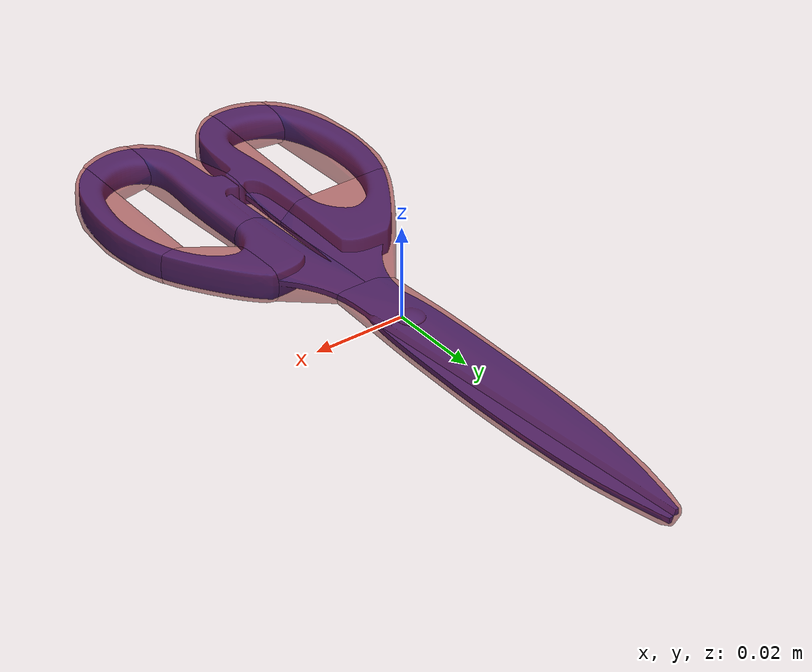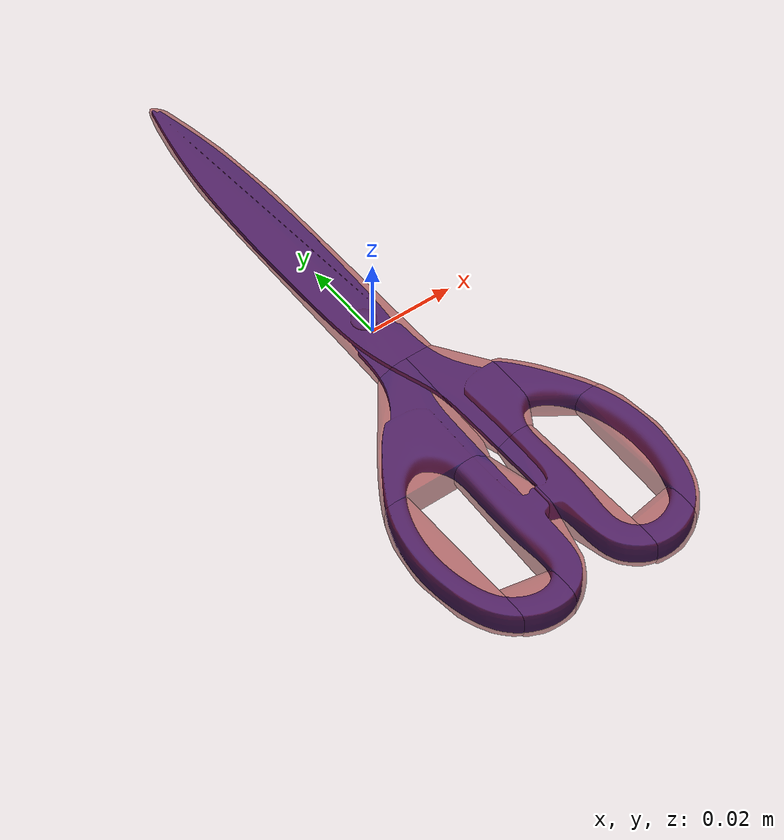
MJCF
<?xml version='1.0' encoding='utf-8'?>
<mujoco model="scissors_10">
  <asset>
    <mesh file="visual/model_normalized_0.obj" name="model_normalized_0_vis" scale="0.15999999999999998 0.15999999999999998 0.15999999999999998" refquat="0.7071067811865475 0.0 0.0 0.7071067811865476" />
    <texture type="2d" name="image0" file="visual/image0.png" />
    <material name="Scissors_Blue" texture="image0" specular="0.5" shininess="0.25" />
    <mesh file="collision/collision_mesh_collision_0.obj" name="scissors_collision_mesh_0" scale="0.15999999999999998 0.15999999999999998 0.15999999999999998" refquat="0.7071067811865475 0.0 0.0 0.7071067811865476" />
    <mesh file="collision/collision_mesh_collision_1.obj" name="scissors_collision_mesh_1" scale="0.15999999999999998 0.15999999999999998 0.15999999999999998" refquat="0.7071067811865475 0.0 0.0 0.7071067811865476" />
    <mesh file="collision/collision_mesh_collision_2.obj" name="scissors_collision_mesh_2" scale="0.15999999999999998 0.15999999999999998 0.15999999999999998" refquat="0.7071067811865475 0.0 0.0 0.7071067811865476" />
    <mesh file="collision/collision_mesh_collision_3.obj" name="scissors_collision_mesh_3" scale="0.15999999999999998 0.15999999999999998 0.15999999999999998" refquat="0.7071067811865475 0.0 0.0 0.7071067811865476" />
    <mesh file="collision/collision_mesh_collision_4.obj" name="scissors_collision_mesh_4" scale="0.15999999999999998 0.15999999999999998 0.15999999999999998" refquat="0.7071067811865475 0.0 0.0 0.7071067811865476" />
    <mesh file="collision/collision_mesh_collision_5.obj" name="scissors_collision_mesh_5" scale="0.15999999999999998 0.15999999999999998 0.15999999999999998" refquat="0.7071067811865475 0.0 0.0 0.7071067811865476" />
    <mesh file="collision/collision_mesh_collision_6.obj" name="scissors_collision_mesh_6" scale="0.15999999999999998 0.15999999999999998 0.15999999999999998" refquat="0.7071067811865475 0.0 0.0 0.7071067811865476" />
    <mesh file="collision/collision_mesh_collision_7.obj" name="scissors_collision_mesh_7" scale="0.15999999999999998 0.15999999999999998 0.15999999999999998" refquat="0.7071067811865475 0.0 0.0 0.7071067811865476" />
    <mesh file="collision/collision_mesh_collision_8.obj" name="scissors_collision_mesh_8" scale="0.15999999999999998 0.15999999999999998 0.15999999999999998" refquat="0.7071067811865475 0.0 0.0 0.7071067811865476" />
    <mesh file="collision/collision_mesh_collision_9.obj" name="scissors_collision_mesh_9" scale="0.15999999999999998 0.15999999999999998 0.15999999999999998" refquat="0.7071067811865475 0.0 0.0 0.7071067811865476" />
  </asset>
  <default>
    <default class="region">
      <geom group="1" conaffinity="0" contype="0" rgba="0 1 0 0" />
    </default>
    <default class="collision">
      <geom group="0" rgba="0.5 0 0 0.5" density="1000.0" />
    </default>
  </default>
  <worldbody>
    <body>
      <body name="object">
        <geom solimp="0.998 0.998 0.001" solref="0.001 1" density="100" friction="0.95 0.3 0.1" type="mesh" mesh="model_normalized_0_vis" conaffinity="0" contype="0" group="1" material="Scissors_Blue" />
        <geom class="region" name="reg_bbox" type="box" pos="2.5216000000005676e-06 -0.00020407200000000178 -9.3600000000138e-08" size="0.030542383999999995 0.08066102559999999 0.0037878567999999994" />
        <geom mesh="scissors_collision_mesh_0" type="mesh" class="collision" />
        <geom mesh="scissors_collision_mesh_1" type="mesh" class="collision" />
        <geom mesh="scissors_collision_mesh_2" type="mesh" class="collision" />
        <geom mesh="scissors_collision_mesh_3" type="mesh" class="collision" />
        <geom mesh="scissors_collision_mesh_4" type="mesh" class="collision" />
        <geom mesh="scissors_collision_mesh_5" type="mesh" class="collision" />
        <geom mesh="scissors_collision_mesh_6" type="mesh" class="collision" />
        <geom mesh="scissors_collision_mesh_7" type="mesh" class="collision" />
        <geom mesh="scissors_collision_mesh_8" type="mesh" class="collision" />
        <geom mesh="scissors_collision_mesh_9" type="mesh" class="collision" />
      </body>
    <site rgba="0 0 0 0" size="0.005" pos="0 0 -0.0037879504" name="bottom_site" /><site rgba="0 0 0 0" size="0.005" pos="0 0 0.0037877632" name="top_site" /><site rgba="0 0 0 0" size="0.005" pos="0.080865098 0.080865098 0" name="horizontal_radius_site" /></body>
  </worldbody>
</mujoco>
